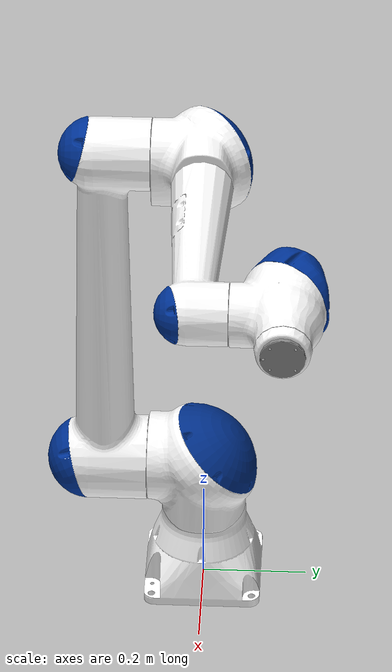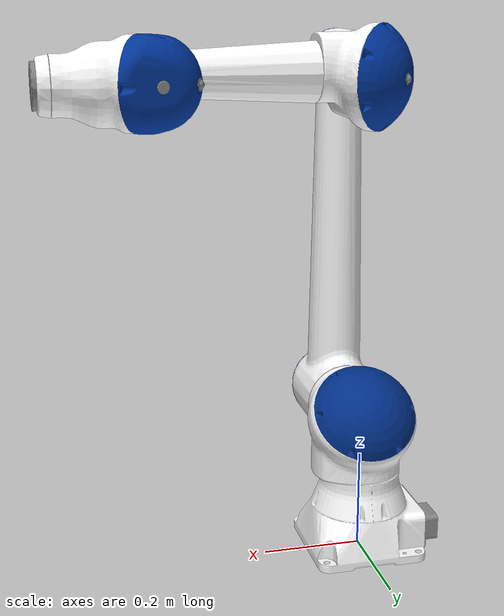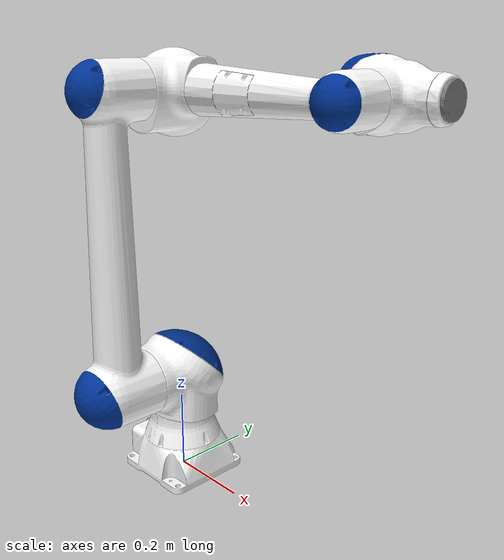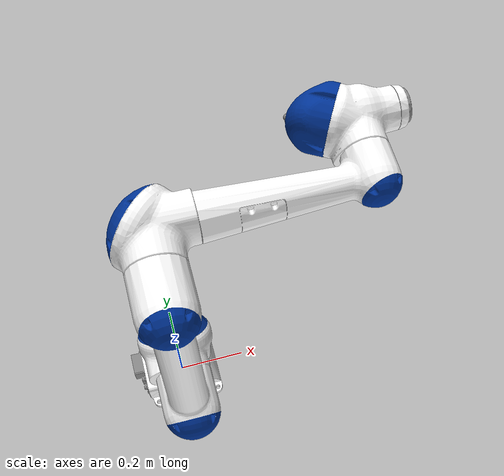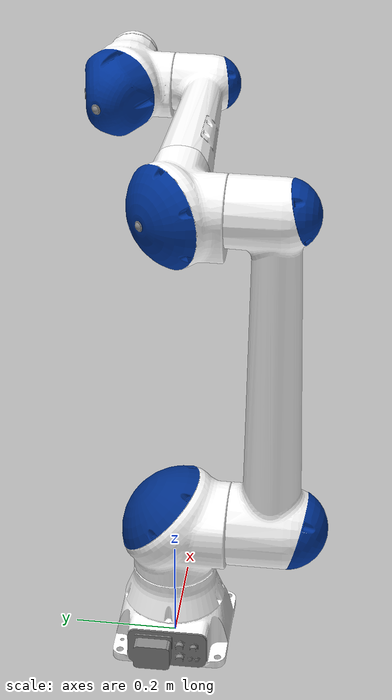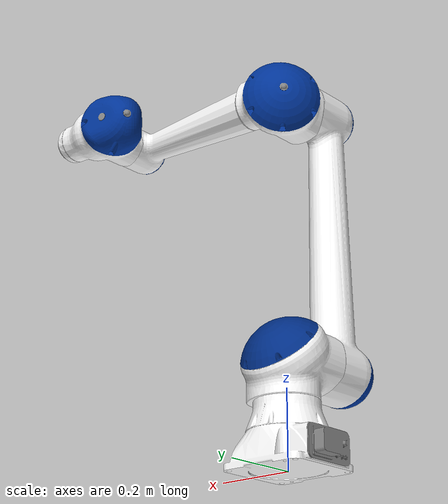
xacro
<?xml version="1.0" ?>
<robot name="motoman_hc10" xmlns:xacro="http://ros.org/wiki/xacro">
  <xacro:include filename="$(find yaskawa_hc10)/urdf/hc10_macro.xacro" />

  <!-- Joint controller -->
  <gazebo>
		<plugin name="gazebo_ros_control" filename="libgazebo_ros_control.so"/>
  </gazebo>

  <!-- Used for fixing robot to Gazebo 'base_link' -->
  <xacro:motoman_hc10 prefix=""/>

  <link name="world"/>
  <joint name="fixed" type="fixed">
    <parent link="world"/>
    <child link="base_link"/>
  </joint>

</robot>

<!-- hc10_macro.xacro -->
<robot xmlns:xacro="http://ros.org/wiki/xacro">
  <xacro:macro name="motoman_hc10" params="prefix">
    <xacro:include filename="$(find yaskawa_hc10)/urdf/common_materials.xacro"/>
    <xacro:include filename="$(find yaskawa_hc10)/urdf/hc10.gazebo" />

    <!-- link list -->
    <link name="${prefix}base_link">
      <visual>
        <geometry>
          <mesh filename="package://motoman_hc10_support/meshes/hc10/visual/base_link.dae"/>
        </geometry>
        <xacro:material_yaskawa_blue/>
      </visual>
      <collision>
        <geometry>
          <mesh filename="package://motoman_hc10_support/meshes/hc10/collision/base_link.stl"/>
        </geometry>
      </collision>
      <inertial>
        <mass value="8" />
        <origin xyz="0 0 0" rpy="0 0 0"/>
        <inertia
        ixx="1.0" ixy="0.0" ixz="0.0"
        iyy="1.0" iyz="0.0"
        izz="1.0"/>
      </inertial>
    </link>
    <link name="${prefix}link_1_s">
      <visual>
        <geometry>
          <mesh filename="package://motoman_hc10_support/meshes/hc10/visual/link_1_s.dae"/>
        </geometry>
        <xacro:material_yaskawa_blue/>
      </visual>
      <collision>
        <geometry>
          <mesh filename="package://motoman_hc10_support/meshes/hc10/collision/link_1_s.stl"/>
        </geometry>
      </collision>
      <inertial>
        <mass value="14" />
        <origin xyz="0 0 0" rpy="0 0 0"/>
        <inertia
        ixx="1.0" ixy="0.0" ixz="0.0"
        iyy="1.0" iyz="0.0"
        izz="1.0"/>
      </inertial>
    </link>
    <link name="${prefix}link_2_l">
      <visual>
        <geometry>
          <mesh filename="package://motoman_hc10_support/meshes/hc10/visual/link_2_l.dae"/>
        </geometry>
        <xacro:material_yaskawa_blue/>
      </visual>
      <collision>
        <geometry>
          <mesh filename="package://motoman_hc10_support/meshes/hc10/collision/link_2_l.stl"/>
        </geometry>
      </collision>
      <inertial>
        <mass value="15" />
        <origin xyz="0 0 0" rpy="0 0 0"/>
        <inertia
        ixx="1.0" ixy="0.0" ixz="0.0"
        iyy="1.0" iyz="0.0"
        izz="1.0"/>
      </inertial>
    </link>
    <link name="${prefix}link_3_u">
      <visual>
        <geometry>
          <mesh filename="package://motoman_hc10_support/meshes/hc10/visual/link_3_u.dae"/>
        </geometry>
        <xacro:material_yaskawa_blue/>
      </visual>
      <collision>
        <geometry>
          <mesh filename="package://motoman_hc10_support/meshes/hc10/collision/link_3_u.stl"/>
        </geometry>
      </collision>
      <inertial>
        <mass value="8" />
        <origin xyz="0 0 0" rpy="0 0 0"/>
        <inertia
        ixx="1.0" ixy="0.0" ixz="0.0"
        iyy="1.0" iyz="0.0"
        izz="1.0"/>
      </inertial>
    </link>
    <link name="${prefix}link_4_r">
      <visual>
        <geometry>
          <mesh filename="package://motoman_hc10_support/meshes/hc10/visual/link_4_r.dae"/>
        </geometry>
        <xacro:material_yaskawa_blue/>
      </visual>
      <collision>
        <geometry>
          <mesh filename="package://motoman_hc10_support/meshes/hc10/collision/link_4_r.stl"/>
        </geometry>
      </collision>
      <inertial>
        <mass value="5" />
        <origin xyz="0 0 0" rpy="0 0 0"/>
        <inertia
        ixx="1.0" ixy="0.0" ixz="0.0"
        iyy="1.0" iyz="0.0"
        izz="1.0"/>
      </inertial>
    </link>
    <link name="${prefix}link_5_b">
      <visual>
        <geometry>
          <mesh filename="package://motoman_hc10_support/meshes/hc10/visual/link_5_b.dae"/>
        </geometry>
        <xacro:material_yaskawa_blue/>
      </visual>
      <collision>
        <geometry>
          <mesh filename="package://motoman_hc10_support/meshes/hc10/collision/link_5_b.stl"/>
        </geometry>
      </collision>
      <inertial>
        <mass value="6" />
        <origin xyz="0 0 0" rpy="0 0 0"/>
        <inertia
        ixx="1.0" ixy="0.0" ixz="0.0"
        iyy="1.0" iyz="0.0"
        izz="1.0"/>
      </inertial>
    </link>
    <link name="${prefix}link_6_t">
      <visual>
        <geometry>
          <mesh filename="package://motoman_hc10_support/meshes/hc10dt/visual/link_6_t.dae"/>
        </geometry>
        <xacro:material_yaskawa_blue/>
      </visual>
      <collision>
        <geometry>
          <mesh filename="package://motoman_hc10_support/meshes/hc10dt/collision/link_6_t.stl"/>
       </geometry>
      </collision>
      <inertial>
        <mass value="2" />
        <origin xyz="0 0 0" rpy="0 0 0"/>
        <inertia
        ixx="1.0" ixy="0.0" ixz="0.0"
        iyy="1.0" iyz="0.0"
        izz="1.0"/>
      </inertial>
    </link>
    <!-- end of link list -->

    <xacro:property name="joint_d" value="1" />
    <xacro:property name="joint_eff" value="10000000" />
    <xacro:property name="joint_vel" value="20" />
    <xacro:property name="joint_f" value="100" />

    <!-- joint list -->
    <joint name="${prefix}joint_1_s" type="revolute">
      <parent link="${prefix}base_link"/>
      <child link="${prefix}link_1_s"/>
      <origin xyz="0 0 0.275" rpy="0 0 0" />
      <axis xyz="0 0 1" />
      <limit lower="${radians(-180)}" upper="${radians(180)}" effort="${joint_eff}" velocity="${radians(130)}"/>
      <dynamics damping="0" friction="0" />
    </joint>
    <joint name="${prefix}joint_2_l" type="revolute">
      <parent link="${prefix}link_1_s"/>
      <child link="${prefix}link_2_l"/>
      <origin xyz="0 0 0" rpy="0 0 0" />
      <axis xyz="0 1 0" />
      <limit lower="${radians(-180)}" upper="${radians(180)}" effort="${joint_eff}" velocity="${radians(130)}"/>
      <dynamics damping="${joint_d}" friction="${joint_f}" />
    </joint>
    <joint name="${prefix}joint_3_u" type="revolute">
      <parent link="${prefix}link_2_l"/>
      <child link="${prefix}link_3_u"/>
      <origin xyz="0 0 0.700" rpy="0 ${radians(-90)} 0" />
      <axis xyz="0 -1 0" />
      <limit lower="${radians(-180)}" upper="${radians(180)}" effort="${joint_eff}" velocity="${radians(180)}"/>
      <dynamics damping="${joint_d}" friction="${joint_f}" />
    </joint>
    <joint name="${prefix}joint_4_r" type="revolute">
      <parent link="${prefix}link_3_u"/>
      <child link="${prefix}link_4_r"/>
      <origin xyz="0 0 -0.500" rpy="0 0 0" />
      <axis xyz="0 0 1" />
      <limit lower="${radians(-180)}" upper="${radians(180)}" effort="${joint_eff}" velocity="${radians(180)}"/>
      <dynamics damping="${joint_d}" friction="${joint_f}" />
    </joint>
    <joint name="${prefix}joint_5_b" type="revolute">
      <parent link="${prefix}link_4_r"/>
      <child link="${prefix}link_5_b"/>
      <origin xyz="0 0.162 0" rpy="0 0 0" />
      <axis xyz="0 -1 0" />
      <limit lower="${radians(-180)}" upper="${radians(180)}" effort="${joint_eff}" velocity="${radians(250)}"/>
      <dynamics damping="${joint_d}" friction="${joint_f}" />
    </joint>
    <joint name="${prefix}joint_6_t" type="revolute">
      <parent link="${prefix}link_5_b"/>
      <child link="${prefix}link_6_t"/>
      <origin xyz="0 0 0" rpy="0 0 0" />
      <axis xyz="0 0 1" />
      <limit lower="${radians(-180)}" upper="${radians(180)}" effort="${joint_eff}" velocity="${radians(250)}"/>
      <dynamics damping="${joint_d}" friction="${joint_f}" />
    </joint>
    <!-- end of joint list -->

    <!-- joint controller list -->
    <xacro:simple_transmission name="${prefix}joint_1_s" interface="hardware_interface/EffortJointInterface" />
    <xacro:simple_transmission name="${prefix}joint_2_l" interface="hardware_interface/EffortJointInterface" />
    <xacro:simple_transmission name="${prefix}joint_3_u" interface="hardware_interface/EffortJointInterface" />
    <xacro:simple_transmission name="${prefix}joint_4_r" interface="hardware_interface/EffortJointInterface" />
    <xacro:simple_transmission name="${prefix}joint_5_b" interface="hardware_interface/EffortJointInterface" />
    <xacro:simple_transmission name="${prefix}joint_6_t" interface="hardware_interface/EffortJointInterface" />
    <!-- end of joint controller list -->

    <!-- ROS base_link to Robot Manufacturer World Coordinates transform -->
    <link name="${prefix}base" />
    <joint name="${prefix}base_link-base" type="fixed">
      <origin xyz="0 0 0.275" rpy="0 0 0"/>
      <parent link="${prefix}base_link"/>
      <child link="${prefix}base"/>
    </joint>

    <gazebo reference="${prefix}base_link">
      <gravity>0</gravity>
    </gazebo>
    <gazebo reference="${prefix}link_1_s">
      <gravity>0</gravity>
    </gazebo>
    <gazebo reference="${prefix}link_2_l">
      <gravity>0</gravity>
    </gazebo>
    <gazebo reference="{prefix}link_3_u">
      <gravity>0</gravity>
    </gazebo>
    <gazebo reference="{prefix}link_4_r">
      <gravity>0</gravity>
    </gazebo>
    <gazebo reference="${prefix}link_5_b">
      <gravity>0</gravity>
    </gazebo>
    <gazebo reference="${prefix}link_6_t">
      <gravity>0</gravity>
    </gazebo>

  </xacro:macro>
</robot>
